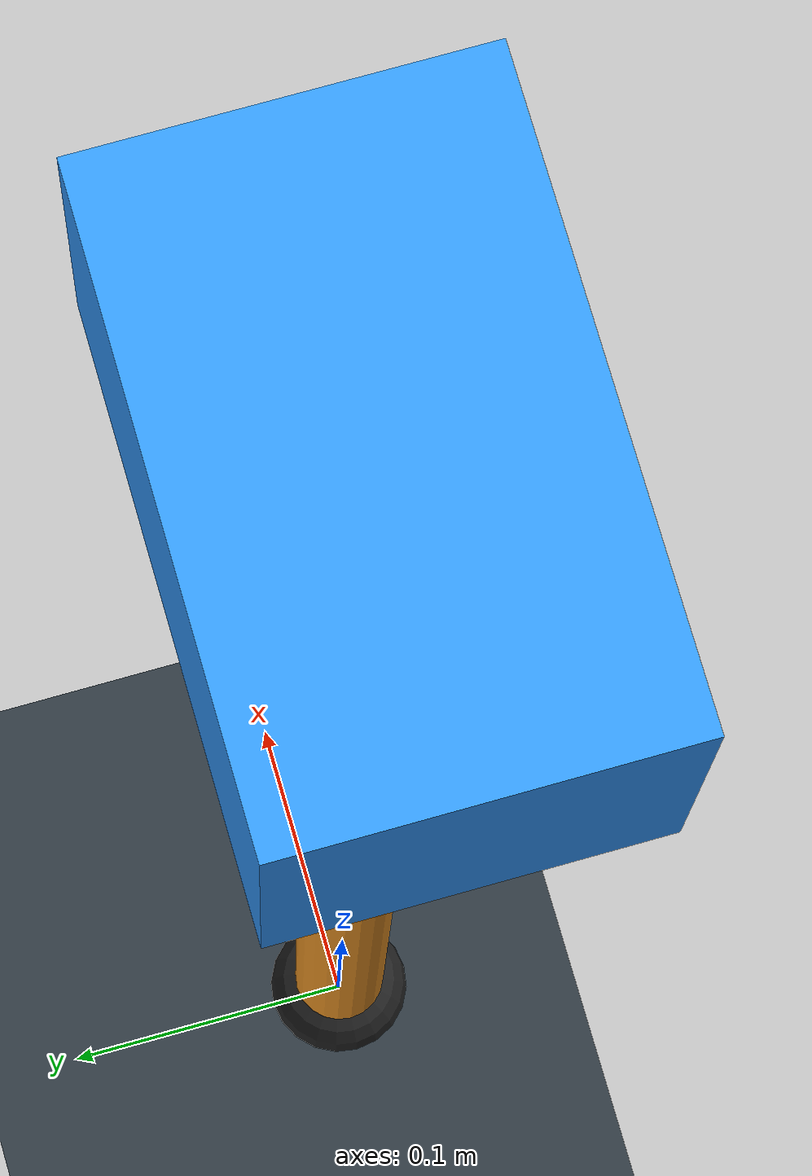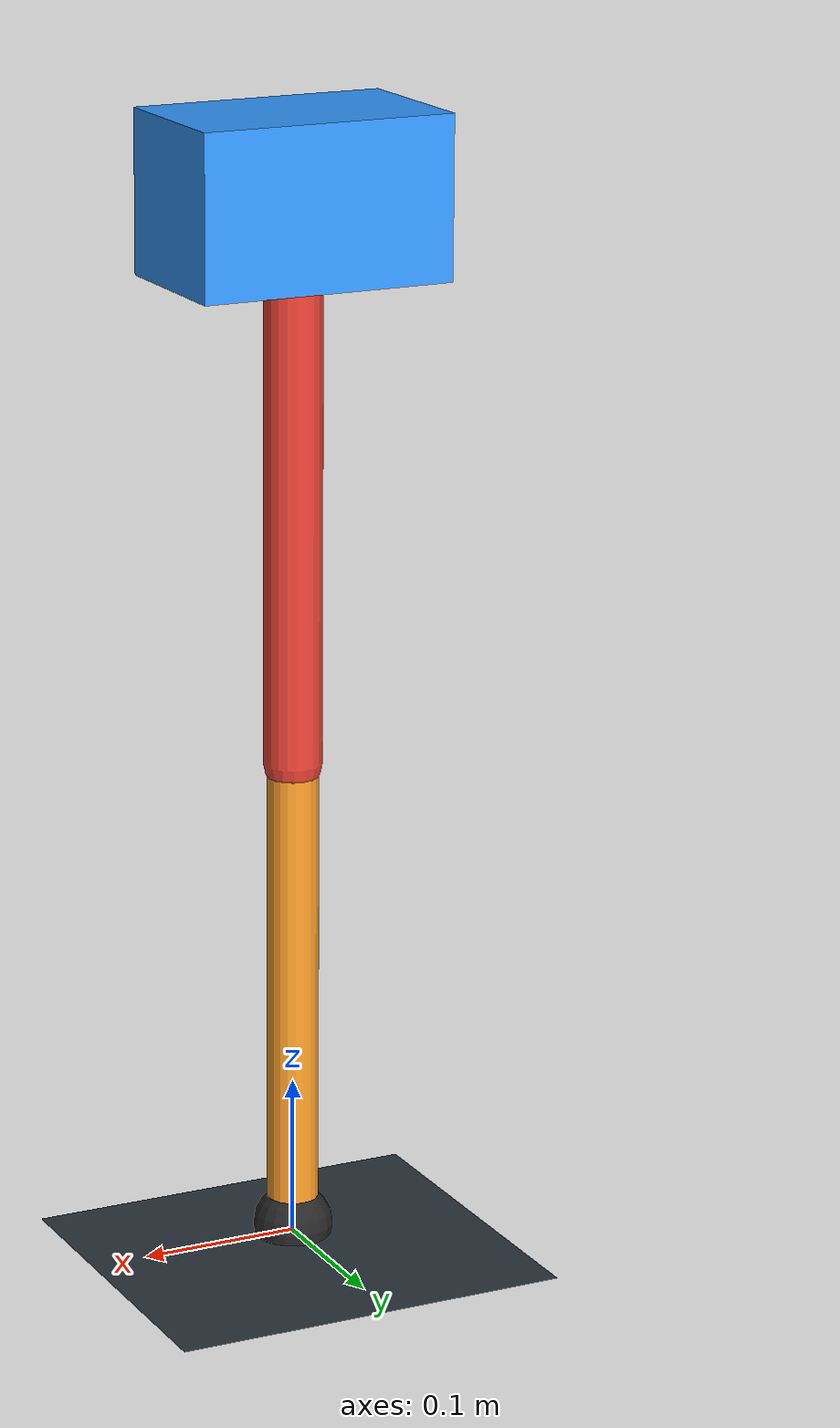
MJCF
<mujoco model="single_axis_two_bar">
  <compiler angle="radian" inertiafromgeom="true"/>
  <option timestep="0.001" integrator="implicitfast" gravity="0 0 -9.81"/>
  <default>
    <joint damping="0.08"/>
    <geom friction="1.2 0.01 0.0001" condim="3"/>
  </default>
  <worldbody>
    <geom name="floor" type="plane" size="5 5 0.1" rgba="0.18 0.22 0.25 1"/>
    <body name="carriage" pos="0 0 0.6564075200158446">
      <joint name="pole_slide" type="slide" axis="0 0 1"/>
      <geom name="payload" type="box" size="0.08 0.05 0.05" mass="2.7594176382805884" rgba="0.2 0.6 1 1"/>
      <body name="thigh" pos="0 0 0">
        <joint name="hip" type="hinge" axis="0 1 0"/>
        <geom name="thigh_link" type="capsule" fromto="0 0 0 0 0 -0.3494469862350557" size="0.018" mass="0.24898559522700275" rgba="0.9 0.25 0.2 1"/>
        <body name="shank" pos="0 0 -0.3494469862350557">
          <joint name="knee" type="hinge" axis="0 1 0"/>
          <geom name="shank_link" type="capsule" fromto="0 0 0 0 0 -0.3014886014101449" size="0.016" mass="0.2148146123251099" rgba="0.95 0.6 0.15 1"/>
          <geom name="foot" type="sphere" pos="0 0 -0.3014886014101449" size="0.025" mass="0.03" rgba="0.15 0.15 0.15 1"/>
          <site name="toe" pos="0 0 -0.3014886014101449" size="0.008"/>
        </body>
      </body>
    </body>
  </worldbody>
  <actuator>
    <motor name="hip_motor" joint="hip" ctrlrange="-43.3587582525959 43.3587582525959"/>
    <motor name="knee_motor" joint="knee" ctrlrange="-69.2313887729475 69.2313887729475"/>
  </actuator>
</mujoco>
